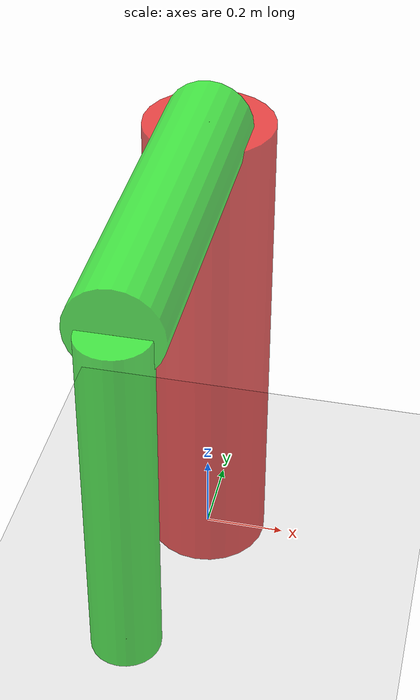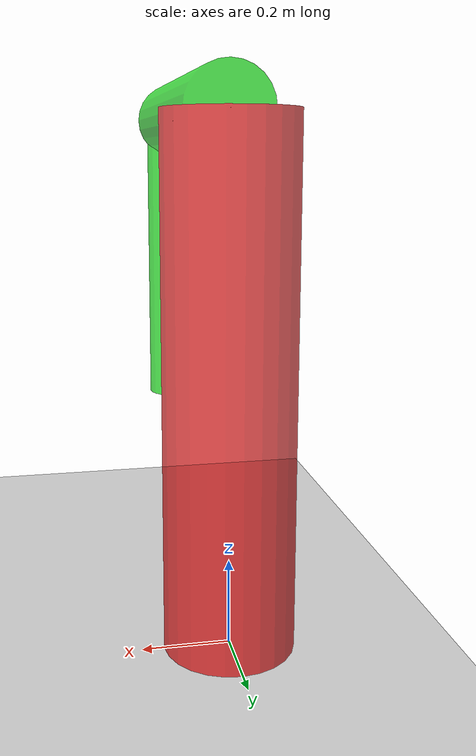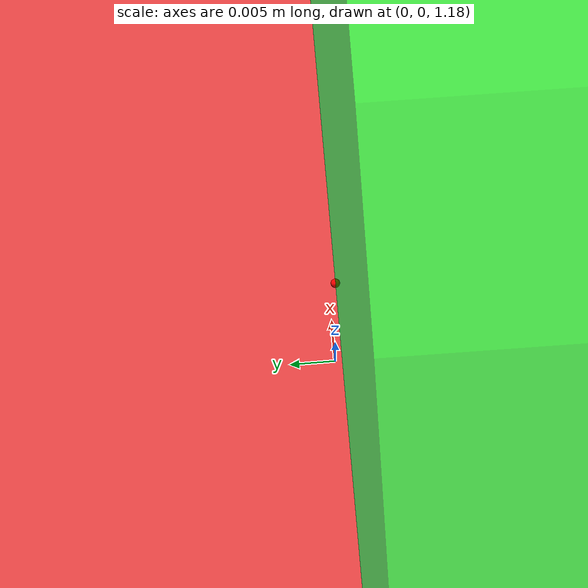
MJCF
<mujoco>
<option gravity="0 0 -9.80665" integrator = "RK4"/>
	<worldbody>
    <light diffuse=".5 .5 .5" pos="0 0 3" dir="0 0 -1"/>
	<geom type="plane" size="2.5 2.5 0.1" rgba=".9 .9 .9 1" pos="0 0 0"/>
	<geom type="cylinder" size=".15 0.6" fromto="0 0 0 0 0 1.2" rgba="0.9 0 0 0.7"/>
		<body name="body1" pos="0 0 1.2" xyaxes="1 0 0 0 0 1">
		<joint name="joint1" type="hinge" axis="0 1 0" pos="0 -1.2 0"/>
		<site name="body1sensor" pos="0 0 0.0" rgba="1 0 0 1" size="0.0005 0.0005 0.0005" type="sphere"/>
		<inertial mass="1" pos="0 0 0" fullinertia="0.1 0.1 0.1 0 0 0"/>
			<body name="body2" pos="0 0 0.8" xyaxes="1 0 0 0 0 1">
			<joint name="joint2" type="hinge" axis="0 1 0" pos="0 -0.8 0"/>
			<site name="body2sensor" pos="0 0 0.0" rgba="1 0 0 1" size="0.0005 0.0005 0.0005" type="sphere"/>
			<geom type="cylinder" size=".1 0.4" fromto="0 0 0 0 -0.8 0" rgba="0 0.9 0 0.7"/>
				<body name="body3" pos="0 0 0.8" xyaxes="0 -1 0 1 0 0">
				<geom type="cylinder" size=".075 0.4" fromto="0 0 0 0 0 -0.8" rgba="0 0.9 0 .7"/>
				<site name="body3sensor" pos="0 0 0.0" rgba="1 0 0 1" size="0.0005 0.0005 0.0005" type="sphere"/>
				</body>
			</body>
		</body>
	</worldbody>
	<actuator>
		<motor name="joint1motor" joint="joint1" />
	</actuator>
	<sensor>
        <velocimeter name="body3vel" site="body3sensor"/>
		<gyro name="body3ang" site="body3sensor"/>
		<framelinvel name="spatial3vel" objtype="site" objname="body3sensor"/>
		<frameangvel name="spatial3ang" objtype="site" objname="body3sensor"/>
        <velocimeter name="body2vel" site="body2sensor"/>
		<gyro name="body2ang" site="body2sensor"/>
		<framelinvel name="spatial2vel" objtype="site" objname="body2sensor"/>
		<frameangvel name="spatial2ang" objtype="site" objname="body2sensor"/>
		<framelinvel name="spatial1vel" objtype="site" objname="body1sensor"/>
		<frameangvel name="spatial1ang" objtype="site" objname="body1sensor"/>
	</sensor>
	<keyframe>
	<key name="home" qpos="2.618 -1.346"/>
	</keyframe>
</mujoco>
